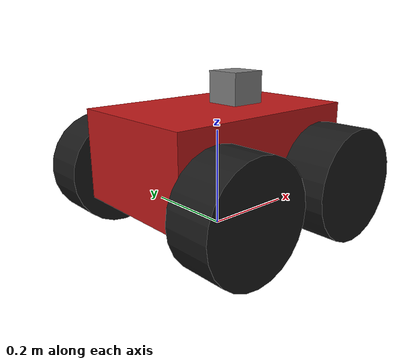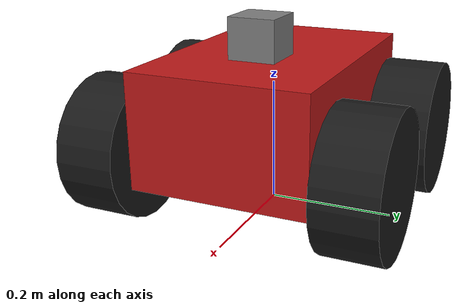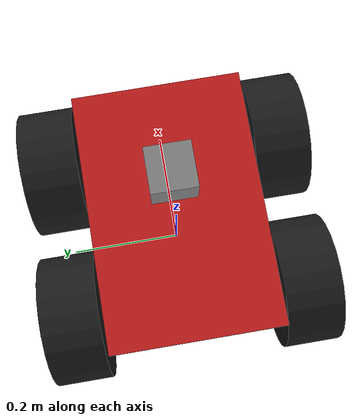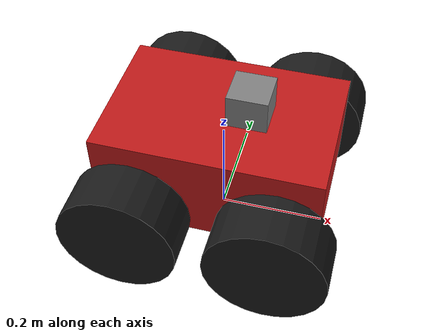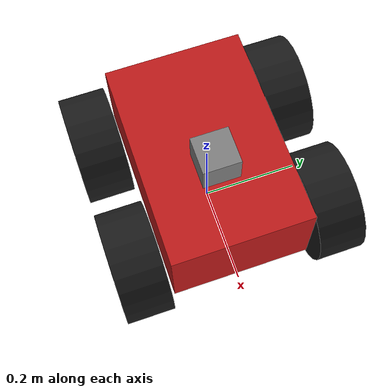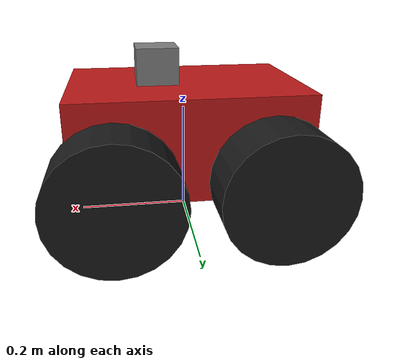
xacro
<?xml version="1.0"?>
<robot name="p3at" xmlns:xacro="http://www.ros.org/wiki/xacro">
  <!-- Sensor parameters, overridable from the launch file for stress tests -->
  <!-- lidar: l2 (Unitree L2 pattern, via l2_lidar.py) or vlp16 (16-ring spinning lidar, via cloud_fields.py).
       Same mount, link and IMU for both, so a comparison changes only the scan pattern. -->
  <xacro:arg name="lidar" default="l2"/>
  <xacro:property name="lidar_model" value="$(arg lidar)"/>
  <xacro:arg name="lidar_hz" default="10"/>
  <xacro:arg name="lidar_noise" default="0.01"/>
  <xacro:arg name="imu_hz" default="200"/>
  <xacro:arg name="imu_noise_scale" default="1.0"/>

  <!-- Approximate Pioneer 3-AT geometry (metres, kg) -->
  <xacro:property name="wheel_r" value="0.111"/>
  <xacro:property name="wheel_w" value="0.095"/>
  <xacro:property name="wheel_m" value="1.0"/>
  <xacro:property name="wheel_x" value="0.134"/>
  <xacro:property name="wheel_y" value="0.197"/>
  <xacro:property name="track_eff" value="${2*wheel_y/0.80}"/>
  <xacro:property name="body_l" value="0.42"/>
  <xacro:property name="body_w" value="0.28"/>
  <xacro:property name="body_h" value="0.18"/>
  <xacro:property name="body_m" value="10.0"/>

  <link name="base_footprint"/>

  <link name="base_link">
    <visual>
      <origin xyz="0 0 0.05"/>
      <geometry><box size="${body_l} ${body_w} ${body_h}"/></geometry>
      <material name="red"><color rgba="0.75 0.1 0.1 1"/></material>
    </visual>
    <collision>
      <origin xyz="0 0 0.05"/>
      <geometry><box size="${body_l} ${body_w} ${body_h}"/></geometry>
    </collision>
    <inertial>
      <origin xyz="0 0 0.05"/>
      <mass value="${body_m}"/>
      <inertia ixx="${body_m/12*(body_w**2+body_h**2)}" ixy="0" ixz="0"
               iyy="${body_m/12*(body_l**2+body_h**2)}" iyz="0"
               izz="${body_m/12*(body_l**2+body_w**2)}"/>
    </inertial>
  </link>

  <joint name="base_footprint_joint" type="fixed">
    <parent link="base_footprint"/>
    <child link="base_link"/>
    <origin xyz="0 0 ${wheel_r}"/>
  </joint>

  <xacro:macro name="wheel" params="name x y">
    <link name="${name}_wheel">
      <visual>
        <origin rpy="${pi/2} 0 0"/>
        <geometry><cylinder radius="${wheel_r}" length="${wheel_w}"/></geometry>
        <material name="black"><color rgba="0.1 0.1 0.1 1"/></material>
      </visual>
      <collision>
        <origin rpy="${pi/2} 0 0"/>
        <geometry><cylinder radius="${wheel_r}" length="${wheel_w}"/></geometry>
      </collision>
      <inertial>
        <origin rpy="${pi/2} 0 0"/>
        <mass value="${wheel_m}"/>
        <inertia ixx="${wheel_m*(3*wheel_r**2+wheel_w**2)/12}" ixy="0" ixz="0"
                 iyy="${wheel_m*(3*wheel_r**2+wheel_w**2)/12}" iyz="0"
                 izz="${wheel_m*wheel_r**2/2}"/>
      </inertial>
    </link>
    <joint name="${name}_wheel_joint" type="continuous">
      <parent link="base_link"/>
      <child link="${name}_wheel"/>
      <origin xyz="${x} ${y} 0"/>
      <axis xyz="0 1 0"/>
    </joint>
    <gazebo reference="${name}_wheel">
      <fdir1>0 0 1</fdir1>
      <mu1>0.5</mu1>
      <mu2>1.0</mu2>
    </gazebo>
  </xacro:macro>

  <xacro:wheel name="front_left"  x="${wheel_x}"  y="${wheel_y}"/>
  <xacro:wheel name="front_right" x="${wheel_x}"  y="${-wheel_y}"/>
  <xacro:wheel name="rear_left"   x="${-wheel_x}" y="${wheel_y}"/>
  <xacro:wheel name="rear_right"  x="${-wheel_x}" y="${-wheel_y}"/>

  <!-- Unitree L2 lidar (75 x 75 x 65 mm, 230 g), upright on top of the chassis -->
  <link name="lidar_link">
    <visual>
      <geometry><box size="0.075 0.075 0.065"/></geometry>
      <material name="grey"><color rgba="0.5 0.5 0.5 1"/></material>
    </visual>
    <collision><geometry><box size="0.075 0.075 0.065"/></geometry></collision>
    <inertial>
      <mass value="0.23"/>
      <inertia ixx="0.001" ixy="0" ixz="0" iyy="0.001" iyz="0" izz="0.001"/>
    </inertial>
  </link>
  <joint name="lidar_joint" type="fixed">
    <parent link="base_link"/>
    <child link="lidar_link"/>
    <origin xyz="0.05 0 ${0.05 + body_h/2 + 0.0325}"/>
  </joint>

  <!-- The L2's built-in IMU. Factory offset IMU -> lidar is (0.007698, 0.014655, -0.00667) m -->
  <link name="imu_link"/>
  <joint name="imu_joint" type="fixed">
    <parent link="lidar_link"/>
    <child link="imu_link"/>
    <origin xyz="-0.007698 -0.014655 0.00667"/>
  </joint>

  <xacro:property name="n" value="$(arg imu_noise_scale)"/>
  <xacro:macro name="imu_axis_noise" params="sd bias">
    <noise type="gaussian">
      <mean>0</mean><stddev>${sd*n}</stddev>
      <bias_mean>${bias*n}</bias_mean><bias_stddev>${bias*n/10}</bias_stddev>
    </noise>
  </xacro:macro>

  <gazebo reference="lidar_link">
    <sensor name="lidar" type="gpu_lidar">
      <topic>lidar</topic>
      <ignition_frame_id>lidar_link</ignition_frame_id>
      <update_rate>$(arg lidar_hz)</update_rate>
      <always_on>true</always_on>
      <visualize>false</visualize>
      <lidar>
        <xacro:if value="${lidar_model == 'l2'}">
          <scan>
            <!-- A 1-degree range image of the L2's 360 x 96 deg view (elevation -6..90 deg).
                 l2_lidar.py reads it along the L2's scan pattern. -->
            <horizontal>
              <samples>361</samples>
              <resolution>1</resolution>
              <min_angle>${-pi}</min_angle>
              <max_angle>${pi}</max_angle>
            </horizontal>
            <vertical>
              <samples>97</samples>
              <resolution>1</resolution>
              <min_angle>${-6*pi/180}</min_angle>
              <max_angle>${pi/2}</max_angle>
            </vertical>
          </scan>
          <range><min>0.05</min><max>30</max><resolution>0.0045</resolution></range>
        </xacro:if>
        <xacro:if value="${lidar_model == 'vlp16'}">
          <!-- VLP-16-like: 16 rings over +-15 deg, 1024 samples per ring (as the pre-L2 sim) -->
          <scan>
            <horizontal>
              <samples>1024</samples>
              <resolution>1</resolution>
              <min_angle>${-pi}</min_angle>
              <max_angle>${pi}</max_angle>
            </horizontal>
            <vertical>
              <samples>16</samples>
              <resolution>1</resolution>
              <min_angle>${-15*pi/180}</min_angle>
              <max_angle>${15*pi/180}</max_angle>
            </vertical>
          </scan>
          <range><min>0.3</min><max>100</max><resolution>0.01</resolution></range>
        </xacro:if>
        <noise><type>gaussian</type><mean>0</mean><stddev>$(arg lidar_noise)</stddev></noise>
      </lidar>
    </sensor>
  </gazebo>

  <gazebo reference="imu_link">
    <sensor name="imu" type="imu">
      <topic>imu</topic>
      <ignition_frame_id>imu_link</ignition_frame_id>
      <update_rate>$(arg imu_hz)</update_rate>
      <always_on>true</always_on>
      <imu>
        <angular_velocity>
          <x><xacro:imu_axis_noise sd="2e-3" bias="1e-4"/></x>
          <y><xacro:imu_axis_noise sd="2e-3" bias="1e-4"/></y>
          <z><xacro:imu_axis_noise sd="2e-3" bias="1e-4"/></z>
        </angular_velocity>
        <linear_acceleration>
          <x><xacro:imu_axis_noise sd="1.7e-2" bias="1e-3"/></x>
          <y><xacro:imu_axis_noise sd="1.7e-2" bias="1e-3"/></y>
          <z><xacro:imu_axis_noise sd="1.7e-2" bias="1e-3"/></z>
        </linear_acceleration>
      </imu>
    </sensor>
  </gazebo>

  <!-- Gazebo Fortress plugins -->
  <gazebo>
    <plugin filename="ignition-gazebo-diff-drive-system"
            name="ignition::gazebo::systems::DiffDrive">
      <left_joint>front_left_wheel_joint</left_joint>
      <left_joint>rear_left_wheel_joint</left_joint>
      <right_joint>front_right_wheel_joint</right_joint>
      <right_joint>rear_right_wheel_joint</right_joint>
      <wheel_separation>${track_eff}</wheel_separation>
      <wheel_radius>${wheel_r}</wheel_radius>
      <max_linear_acceleration>1.0</max_linear_acceleration>
      <topic>cmd_vel</topic>
      <odom_topic>odom</odom_topic>
      <tf_topic>tf</tf_topic>
      <frame_id>odom</frame_id>
      <child_frame_id>base_footprint</child_frame_id>
      <odom_publisher_frequency>30</odom_publisher_frequency>
    </plugin>
    <plugin filename="ignition-gazebo-joint-state-publisher-system"
            name="ignition::gazebo::systems::JointStatePublisher">
      <topic>joint_states</topic>
    </plugin>
    <!-- Ground truth: true pose of base_footprint in the world frame, for evaluation -->
    <plugin filename="ignition-gazebo-odometry-publisher-system"
            name="ignition::gazebo::systems::OdometryPublisher">
      <odom_frame>world</odom_frame>
      <robot_base_frame>base_footprint</robot_base_frame>
      <odom_topic>ground_truth</odom_topic>
      <odom_publish_frequency>100</odom_publish_frequency>
      <dimensions>3</dimensions>
    </plugin>
  </gazebo>
</robot>
